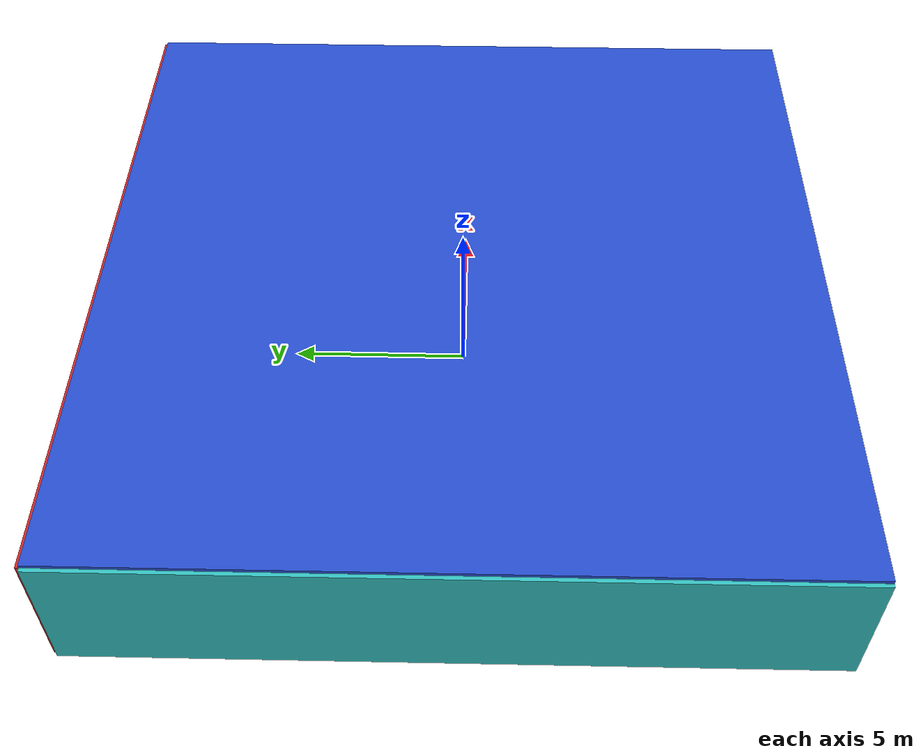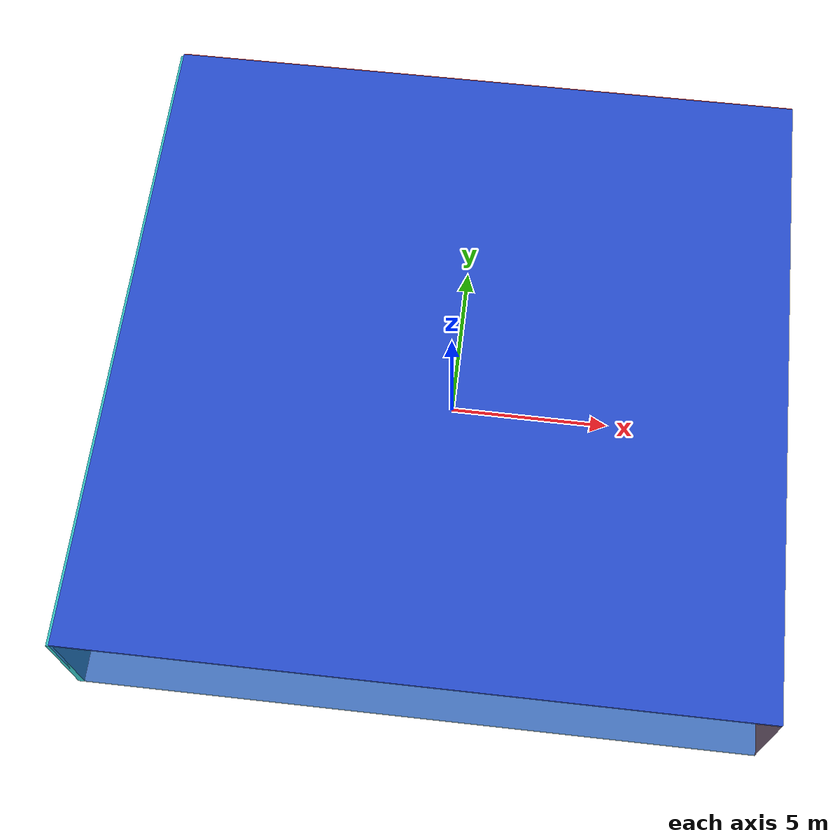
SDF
<sdf version="1.4">
 <world name="default">
  <physics type="ode">
   <max_step_size>0.001</max_step_size>
   <real_time_factor>1</real_time_factor>
   <real_time_update_rate>1000</real_time_update_rate>
   <gravity>0 0 -9.8</gravity>
  </physics>
  <scene><ambient>0.4 0.4 0.4 1</ambient><background>0.7 0.7 0.7 1</background><shadows>1</shadows></scene>
  <model name="Surrounding">
   <static>1</static>
   <link name="Ceiling">
    <collision name="Ceiling_Collision"><geometry><box><size>20 20 0.1</size></box></geometry></collision>
    <visual name="Ceiling_Visual">
     <geometry><box><size>20 20 0.1</size></box></geometry>
     <material>
      <script><uri>file://media/materials/scripts/gazebo.material</uri><name>Gazebo/BlueGlow</name></script>
     </material>
    </visual>
    <pose>0 0 4.05 0 0 0</pose>
   </link>
   <link name="Wall_South">
    <collision name="Wall_South_Collision">
     <geometry><box><size>20 0 4</size></box></geometry>
     <pose>0 0 2 0 -0 0</pose>
    </collision>
    <visual name="Wall_South_Visual">
     <pose>0 0 2 0 -0 0</pose>
     <geometry><box><size>20 0 4</size></box></geometry>
     <material>
      <script><uri>file://media/materials/scripts/gazebo.material</uri><name>Gazebo/BlueTransparent</name></script>
     </material>
    </visual>
    <velocity_decay><linear>0</linear><angular>0</angular></velocity_decay>
    <pose>0 -10 0 0 -0 0</pose>
   </link>
   <link name="Wall_East">
    <collision name="Wall_21_Collision">
     <geometry><box><size>20 0 4</size></box></geometry>
     <pose>0 0 2 0 -0 0</pose>
    </collision>
    <visual name="Wall_21_Visual">
     <pose>0 0 2 0 -0 0</pose>
     <geometry><box><size>20 0 4</size></box></geometry>
     <material>
      <script><uri>file://media/materials/scripts/gazebo.material</uri><name>Gazebo/Orange</name></script>
     </material>
    </visual>
    <velocity_decay><linear>0</linear><angular>0</angular></velocity_decay>
    <pose>10 0 0 0 -0 1.5708</pose>
   </link>
   <link name="Wall_North">
    <collision name="Wall_22_Collision">
     <geometry><box><size>20 0.2 4</size></box></geometry>
     <pose>0 0 2 0 -0 0</pose>
    </collision>
    <visual name="Wall_22_Visual">
     <pose>0 0 2 0 -0 0</pose>
     <geometry><box><size>20 0.2 4</size></box></geometry>
     <material>
      <script><uri>file://media/materials/scripts/gazebo.material</uri><name>Gazebo/Red</name></script>
     </material>
    </visual>
    <velocity_decay><linear>0</linear><angular>0</angular></velocity_decay>
    <pose>0 10 0 0 -0 0</pose>
   </link>
   <link name="Wall_West">
    <collision name="Wall_23_Collision">
     <geometry><box><size>20 0.2 4</size></box></geometry>
     <pose>0 0 2 0 -0 0</pose>
    </collision>
    <visual name="Wall_23_Visual">
     <pose>0 0 2 0 -0 0</pose>
     <geometry><box><size>20 0.2 4</size></box></geometry>
     <material>
      <script><uri>file://media/materials/scripts/gazebo.material</uri><name>Gazebo/Turquoise</name></script>
     </material>
    </visual>
    <velocity_decay><linear>0</linear><angular>0</angular></velocity_decay>
    <pose>-10 0 0 0 0 -1.5708</pose>
   </link>
   <link name="Ground_link">
    <collision name="collision">
     <pose>0 0 .05 0 -0 0</pose>
     <geometry><box><size>20 20 0.1</size></box></geometry>
    </collision>
    <visual name="visual">
     <pose>0 0 .05 0 -0 0</pose>
     <geometry><box><size>20 20 0.1</size></box></geometry>
     <material>
      <script><uri>file://media/materials/scripts/gazebo.material</uri><name>Gazebo/SkyBlue</name></script>
     </material>
    </visual>
   </link>
   <static>1</static>
  </model>
  <spherical_coordinates>
   <surface_model>EARTH_WGS84</surface_model>
   <latitude_deg>0</latitude_deg>
   <longitude_deg>0</longitude_deg>
   <elevation>0</elevation>
   <heading_deg>0</heading_deg>
  </spherical_coordinates>
  <light name="lightball_0" type="diffuse">
   <diffuse>0.8 0.8 0.8 1</diffuse>
   <specular>0.2 0.2 0.2 1</specular>
   <attenuation>
    <range>100</range>
    <constant>0.7</constant>
    <linear>0.01</linear>
    <quadratic>0.001</quadratic>
   </attenuation>
   <direction>-0.5 0.1 -0.9</direction>
   <pose>2.14799115741 -5.94001360163 0.807841343497 0 0 0</pose>
  </light>
  <light name="lightball_1" type="diffuse">
   <diffuse>0.8 0.8 0.8 1</diffuse>
   <specular>0.2 0.2 0.2 1</specular>
   <attenuation>
    <range>100</range>
    <constant>0.7</constant>
    <linear>0.01</linear>
    <quadratic>0.001</quadratic>
   </attenuation>
   <direction>-0.5 0.1 -0.9</direction>
   <pose>2.07390304065 -2.13341748916 3.4875910268 0 0 0</pose>
  </light>
  <light name="lightball_2" type="diffuse">
   <diffuse>0.8 0.8 0.8 1</diffuse>
   <specular>0.2 0.2 0.2 1</specular>
   <attenuation>
    <range>100</range>
    <constant>0.7</constant>
    <linear>0.01</linear>
    <quadratic>0.001</quadratic>
   </attenuation>
   <direction>-0.5 0.1 -0.9</direction>
   <pose>-4.40795810963 -4.96699210825 3.18823176452 0 0 0</pose>
  </light>
  <light name="lightball_3" type="diffuse">
   <diffuse>0.8 0.8 0.8 1</diffuse>
   <specular>0.2 0.2 0.2 1</specular>
   <attenuation>
    <range>100</range>
    <constant>0.7</constant>
    <linear>0.01</linear>
    <quadratic>0.001</quadratic>
   </attenuation>
   <direction>-0.5 0.1 -0.9</direction>
   <pose>-0.188110315598 8.47482621569 1.72773015698 0 0 0</pose>
  </light>
  <light name="lightball_4" type="diffuse">
   <diffuse>0.8 0.8 0.8 1</diffuse>
   <specular>0.2 0.2 0.2 1</specular>
   <attenuation>
    <range>100</range>
    <constant>0.7</constant>
    <linear>0.01</linear>
    <quadratic>0.001</quadratic>
   </attenuation>
   <direction>-0.5 0.1 -0.9</direction>
   <pose>4.19219559452 5.09997092348 2.15370631503 0 0 0</pose>
  </light>
  <light name="lightball_5" type="diffuse">
   <diffuse>0.8 0.8 0.8 1</diffuse>
   <specular>0.2 0.2 0.2 1</specular>
   <attenuation>
    <range>100</range>
    <constant>0.7</constant>
    <linear>0.01</linear>
    <quadratic>0.001</quadratic>
   </attenuation>
   <direction>-0.5 0.1 -0.9</direction>
   <pose>5.63017310693 5.01350977079 3.86832678255 0 0 0</pose>
  </light>
  <light name="lightball_6" type="diffuse">
   <diffuse>0.8 0.8 0.8 1</diffuse>
   <specular>0.2 0.2 0.2 1</specular>
   <attenuation>
    <range>100</range>
    <constant>0.7</constant>
    <linear>0.01</linear>
    <quadratic>0.001</quadratic>
   </attenuation>
   <direction>-0.5 0.1 -0.9</direction>
   <pose>-4.55278593411 -0.270702925503 3.03596543913 0 0 0</pose>
  </light>
  <include><uri>model://cabinet</uri><pose>-6.54361015009 1.27952316616 0 0 0 2.34776827223</pose></include>
  <include>
   <uri>model://construction_cone</uri>
   <pose>-4.08728508935 -0.92747474465 0 0 0 1.35601305991</pose>
  </include>
  <include><uri>model://cabinet</uri><pose>2.48873296666 7.46924231758 0 0 0 0.980223331197</pose></include>
  <include>
   <uri>model://robocup_3Dsim_goal</uri>
   <pose>3.38543539331 8.35758681842 0 0 0 3.10865684423</pose>
  </include>
  <include><uri>model://cabinet</uri><pose>6.67847199829 -5.59952654372 0 0 0 0.462735910861</pose></include>
 </world>
</sdf>

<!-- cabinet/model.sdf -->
<sdf version="1.5">
  <model name="cabinet">
    <static>true</static>
    <link name="cabinet_bottom_plate">
      <inertial>
        <pose>0 0 -1 0 0 0</pose>
        <inertia>
          <ixx>2.050000</ixx>
          <ixy>0</ixy>
          <ixz>0</ixz>
          <iyy>2.050000</iyy>
          <iyz>0</iyz>
          <izz>2.050000</izz>
        </inertia>
        <mass>25.000000</mass>
      </inertial>
      <collision name="cabinet_bottom_plate_geom">
        <pose>0 0 0.010000 0 0 0</pose>
        <geometry>
          <box>
            <size>0.450000 0.450000 0.020000</size>
          </box>
        </geometry>
      </collision>
      <visual name="cabinet_bottom_plate_geom_visual">
        <pose>0 0 0.010000 0 0 0</pose>
        <geometry>
          <box>
            <size>0.450000 0.450000 0.020000</size>
          </box>
        </geometry>
        <material>
          <script>
            <uri>model://media/materials/scripts/gazebo.material</uri>
            <name>Gazebo/Wood</name>
          </script>
        </material>
      </visual>
      <collision name="cabinet_bottom_plate_geom_cabinet_back_plate">
        <pose>0.235000 0 0.510000 0 0 0</pose>
        <geometry>
          <box>
            <size>0.020000 0.450000 1.020000</size>
          </box>
        </geometry>
      </collision>
      <visual name="cabinet_bottom_plate_geom_cabinet_back_plate_visual">
        <pose>0.235000 0 0.510000 0 0 0</pose>
        <geometry>
          <box>
            <size>0.020000 0.450000 1.020000</size>
          </box>
        </geometry>
        <material>
          <script>
            <uri>model://media/materials/scripts/gazebo.material</uri>
            <name>Gazebo/Wood</name>
          </script>
        </material>
      </visual>
      <collision name="cabinet_bottom_plate_geom_cabinet_left_plate">
        <pose>0 0.235000 0.510000 0 0 0</pose>
        <geometry>
          <box>
            <size>0.450000 0.020000 1.020000</size>
          </box>
        </geometry>
      </collision>
      <visual name="cabinet_bottom_plate_geom_cabinet_left_plate_visual">
        <pose>0 0.235000 0.510000 0 0 0</pose>
        <geometry>
          <box>
            <size>0.450000 0.020000 1.020000</size>
          </box>
        </geometry>
        <material>
          <script>
            <uri>model://media/materials/scripts/gazebo.material</uri>
            <name>Gazebo/Wood</name>
          </script>
        </material>
      </visual>
      <collision name="cabinet_bottom_plate_geom_cabinet_middle_plate">
        <pose>0 0 0.510000 0 0 0</pose>
        <geometry>
          <box>
            <size>0.450000 0.450000 0.020000</size>
          </box>
        </geometry>
      </collision>
      <visual name="cabinet_bottom_plate_geom_cabinet_middle_plate_visual">
        <pose>0 0 0.510000 0 0 0</pose>
        <geometry>
          <box>
            <size>0.450000 0.450000 0.020000</size>
          </box>
        </geometry>
        <material>
          <script>
            <uri>model://media/materials/scripts/gazebo.material</uri>
            <name>Gazebo/Wood</name>
          </script>
        </material>
      </visual>
      <collision name="cabinet_bottom_plate_geom_cabinet_right_plate">
        <pose>0 -0.235000 0.510000 0 0 0</pose>
        <geometry>
          <box>
            <size>0.450000 0.020000 1.020000</size>
          </box>
        </geometry>
      </collision>
      <visual name="cabinet_bottom_plate_geom_cabinet_right_plate_visual">
        <pose>0 -0.235000 0.510000 0 0 0</pose>
        <geometry>
          <box>
            <size>0.450000 0.020000 1.020000</size>
          </box>
        </geometry>
        <material>
          <script>
            <uri>model://media/materials/scripts/gazebo.material</uri>
            <name>Gazebo/Wood</name>
          </script>
        </material>
      </visual>
      <collision name="cabinet_bottom_plate_geom_cabinet_top_plate">
        <pose>0 0 1.010000 0 0 0</pose>
        <geometry>
          <box>
            <size>0.450000 0.450000 0.020000</size>
          </box>
        </geometry>
      </collision>
      <visual name="cabinet_bottom_plate_geom_cabinet_top_plate_visual">
        <pose>0 0 1.010000 0 0 0</pose>
        <geometry>
          <box>
            <size>0.450000 0.450000 0.020000</size>
          </box>
        </geometry>
        <material>
          <script>
            <uri>model://media/materials/scripts/gazebo.material</uri>
            <name>Gazebo/Wood</name>
          </script>
        </material>
      </visual>
    </link>
  </model>
</sdf>

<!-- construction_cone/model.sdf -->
<sdf version="1.5">
  <model name="Construction Cone">
    <link name="link">
      <collision name="collision">
        <geometry>
          <mesh>
            <scale>10 10 10</scale>
            <uri>file://isr-testbed/construction_cone/meshes/construction_cone.dae</uri>
          </mesh>
        </geometry>
      </collision>
      <visual name="visual">
        <geometry>
          <mesh>
            <scale>10 10 10</scale>
            <uri>file://isr-testbed/construction_cone/meshes/construction_cone.dae</uri>
          </mesh>
        </geometry>
      </visual>
    </link>
  </model>
</sdf>

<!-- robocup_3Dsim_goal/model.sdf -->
<sdf version="1.5">
  <model name="robocup_3d_goal">
    <static>true</static>
    <link name="left_post">
      <pose>0 1.05 0.45 0 0 0</pose>
      <collision name="collision">
        <geometry>
          <cylinder>
            <radius>0.05</radius>
            <length>0.9</length>
          </cylinder>
        </geometry>
      </collision>
      <visual name="visual">
        <geometry>
          <cylinder>
            <radius>0.05</radius>
            <length>0.9</length>
          </cylinder>
        </geometry>
        <material>
          <script>
            <uri>file://media/materials/scripts/gazebo.material</uri>
            <name>Gazebo/ZincYellow</name>
          </script>
        </material>
      </visual>
    </link>
    <link name="left_support_horiz_lower">
      <pose>0.30 1.05 0.01 0 0 0</pose>
      <collision name="collision">
        <geometry>
          <box>
            <size>0.50 0.02 0.02</size>
          </box>
        </geometry>
      </collision>
      <visual name="visual">
        <geometry>
          <box>
            <size>0.50 0.02 0.02</size>
          </box>
        </geometry>
        <material>
          <script>
            <uri>file://media/materials/scripts/gazebo.material</uri>
            <name>Gazebo/White</name>
          </script>
        </material>
      </visual>
    </link>
    <link name="left_support_horiz_upper">
      <pose>0.30 1.05 0.79 0 0 0</pose>
      <collision name="collision">
        <geometry>
          <box>
            <size>0.50 0.02 0.02</size>
          </box>
        </geometry>
      </collision>
      <visual name="visual">
        <geometry>
          <box>
            <size>0.50 0.02 0.02</size>
          </box>
        </geometry>
        <material>
          <script>
            <uri>file://media/materials/scripts/gazebo.material</uri>
            <name>Gazebo/White</name>
          </script>
        </material>
      </visual>
    </link>
    <link name="left_support_vertical">
      <pose>0.56 1.05 0.4 0 1.5708 0</pose>
      <collision name="collision">
        <geometry>
          <box>
            <size>0.80 0.02 0.02</size>
          </box>
        </geometry>
      </collision>
      <visual name="visual">
        <geometry>
          <box>
            <size>0.80 0.02 0.02</size>
          </box>
        </geometry>
        <material>
          <script>
            <uri>file://media/materials/scripts/gazebo.material</uri>
            <name>Gazebo/White</name>
          </script>
        </material>
      </visual>
    </link>
    <link name="right_support_horiz_lower">
      <pose>0.30 -1.05 0.01 0 0 0</pose>
      <collision name="collision">
        <geometry>
          <box>
            <size>0.50 0.02 0.02</size>
          </box>
        </geometry>
      </collision>
      <visual name="visual">
        <geometry>
          <box>
            <size>0.50 0.02 0.02</size>
          </box>
        </geometry>
        <material>
          <script>
            <uri>file://media/materials/scripts/gazebo.material</uri>
            <name>Gazebo/White</name>
          </script>
        </material>
      </visual>
    </link>
    <link name="right_support_horiz_upper">
      <pose>0.30 -1.05 0.79 0 0 0</pose>
      <collision name="collision">
        <geometry>
          <box>
            <size>0.50 0.02 0.02</size>
          </box>
        </geometry>
      </collision>
      <visual name="visual">
        <geometry>
          <box>
            <size>0.50 0.02 0.02</size>
          </box>
        </geometry>
        <material>
          <script>
            <uri>file://media/materials/scripts/gazebo.material</uri>
            <name>Gazebo/White</name>
          </script>
        </material>
      </visual>
    </link>
    <link name="right_support_vertical">
      <pose>0.56 -1.05 0.4 0 1.5708 0</pose>
      <collision name="collision">
        <geometry>
          <box>
            <size>0.80 0.02 0.02</size>
          </box>
        </geometry>
      </collision>
      <visual name="visual">
        <geometry>
          <box>
            <size>0.80 0.02 0.02</size>
          </box>
        </geometry>
        <material>
          <script>
            <uri>file://media/materials/scripts/gazebo.material</uri>
            <name>Gazebo/White</name>
          </script>
        </material>
      </visual>
    </link>
    <link name="center_support_horiz_lower">
      <pose>0.56 0 0.01 0 1.5708 0</pose>
      <collision name="collision">
        <geometry>
          <box>
            <size>0.02 2.08 0.02</size>
          </box>
        </geometry>
      </collision>
      <visual name="visual">
        <geometry>
          <box>
            <size>0.02 2.08 0.02</size>
          </box>
        </geometry>
        <material>
          <script>
            <uri>file://media/materials/scripts/gazebo.material</uri>
            <name>Gazebo/White</name>
          </script>
        </material>
      </visual>
    </link>
    <link name="center_support_horiz_upper">
      <pose>0.56 0 0.79 0 1.5708 0</pose>
      <collision name="collision">
        <geometry>
          <box>
            <size>0.02 2.08 0.02</size>
          </box>
        </geometry>
      </collision>
      <visual name="visual">
        <geometry>
          <box>
            <size>0.02 2.08 0.02</size>
          </box>
        </geometry>
        <material>
          <script>
            <uri>file://media/materials/scripts/gazebo.material</uri>
            <name>Gazebo/White</name>
          </script>
        </material>
      </visual>
    </link>
    <link name="right_post">
      <pose>0 -1.05 0.45 0 0 0</pose>
      <collision name="collision">
        <geometry>
          <cylinder>
            <radius>0.05</radius>
            <length>0.9</length>
          </cylinder>
        </geometry>
      </collision>
      <visual name="visual">
        <geometry>
          <cylinder>
            <radius>0.05</radius>
            <length>0.9</length>
          </cylinder>
        </geometry>
        <material>
          <script>
            <uri>file://media/materials/scripts/gazebo.material</uri>
            <name>Gazebo/ZincYellow</name>
          </script>
        </material>
      </visual>
    </link>
    <link name="crossbar">
      <pose>0 0 0.85 1.57 1.57 0</pose>
      <collision name="collision">
        <geometry>
          <cylinder>
            <radius>0.05</radius>
            <length>2.0</length>
          </cylinder>
        </geometry>
      </collision>
      <visual name="visual">
        <geometry>
          <cylinder>
            <radius>0.05</radius>
            <length>2.0</length>
          </cylinder>
        </geometry>
        <material>
          <script>
            <uri>file://media/materials/scripts/gazebo.material</uri>
            <name>Gazebo/ZincYellow</name>
          </script>
        </material>
      </visual>
    </link>
    <link name="center_net">
      <pose>0.56 0 0.40 0 0 0</pose>
      <collision name="collision">
        <geometry>
          <box>
            <size>0.01 2.1 0.80</size>
          </box>
        </geometry>
      </collision>
      <visual name="visual">
        <geometry>
          <box>
            <size>0.01 2.1 0.80</size>
          </box>
        </geometry>
        <material>
          <script>
            <uri>model://../model_source/models/robocup09_spl_field/materials/scripts/</uri>
            <uri>model://../model_source/models/robocup09_spl_field/materials/textures/</uri>
            <name>RoboCup/Net</name>
          </script>
        </material>
      </visual>
    </link>
    <link name="left_net">
      <pose>0.30 1.05 0.40 0 0 0</pose>
      <collision name="collision">
        <geometry>
          <box>
            <size>0.50 0.01 0.76</size>
          </box>
        </geometry>
      </collision>
      <visual name="visual">
        <geometry>
          <box>
            <size>0.50 0.01 0.76</size>
          </box>
        </geometry>
        <material>
          <script>
            <uri>model://../model_source/models/robocup09_spl_field/materials/scripts/</uri>
            <uri>model://../model_source/models/robocup09_spl_field/materials/textures/</uri>
            <name>RoboCup/Net</name>
          </script>
        </material>
      </visual>
    </link>
    <link name="right_net">
      <pose>0.30 -1.05 0.40 0 0 0</pose>
      <collision name="collision">
        <geometry>
          <box>
            <size>0.50 0.01 0.76</size>
          </box>
        </geometry>
      </collision>
      <visual name="visual">
        <geometry>
          <box>
            <size>0.50 0.01 0.76</size>
          </box>
        </geometry>
        <material>
          <script>
            <uri>model://../model_source/models/robocup09_spl_field/materials/scripts/</uri>
            <uri>model://../model_source/models/robocup09_spl_field/materials/textures/</uri>
            <name>RoboCup/Net</name>
          </script>
        </material>
      </visual>
    </link>
  </model>
</sdf>
